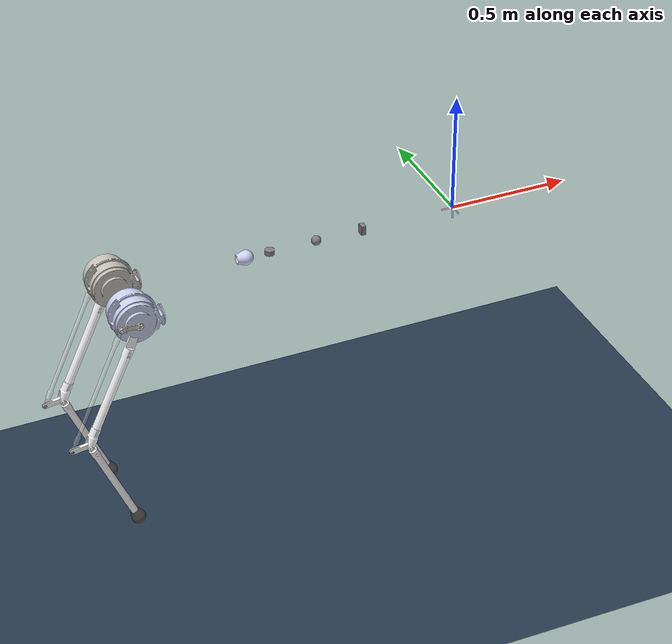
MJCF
<!-- 相同 calf 版本 -->
<mujoco model="legged">
    <compiler angle="radian" />
    <option timestep="0.001" gravity="0 0 -10" />
    <include file="./worlds.xml" />
    <asset>
        <mesh name="torso_link" file="foot_l_Link.STL" />
        <mesh name="motor_r_Link" file="motor_r_Link.STL" />
        <mesh name="thigh_r_Link" file="thigh_r_Link.STL" />
        <mesh name="shank_r_Link" file="shank_r_Link.STL" />
        <mesh name="foot_r_Link" file="foot_r_Link.STL" />
        <mesh name="crank_r_Link" file="crank_r_Link.STL" />
        <mesh name="calf_r_Link" file="calf_r_Link.STL" />
        <mesh name="motor_l_Link" file="motor_l_Link.STL" />
        <mesh name="thigh_l_Link" file="thigh_l_Link.STL" />
        <mesh name="shank_l_Link" file="shank_l_Link.STL" />
        <mesh name="foot_l_Link" file="foot_l_Link.STL" />
        <mesh name="crank_l_Link" file="crank_l_Link.STL" />
        <mesh name="calf_l_Link" file="calf_r_Link.STL" />
    </asset>

    <default>
        <joint damping="0.03" frictionloss="0.02" range="-45 45" />
    </default>

    <worldbody>
        <light name="spotlight" mode="targetbodycom" target="torso_Link"
            diffuse=".8 .8 .8" specular="0.3 0.3 0.3" pos="0 -6 4" cutoff="30" />
        <camera name="topview" pos="0 0 200" xyaxes="1 0 0 0 1 0" target="torso_Link" />
        <geom name="ground" type="plane" size="0 0 1" pos="0.0 0 -1.5" quat="1 0 0 0"
            material="matplane" condim="1" conaffinity='15' />
        <body name="ctbase">
            <body name="x_block" pos="-0.4 0 0">
                <inertial pos="0 0 0" mass="1e-07" diaginertia="1e-10 1e-10 1e-10" />
                <geom size="0.01 0.015 0.02" type="box" contype="0" conaffinity="0" group="1"
                    density="0" />
                <body name="y_block" pos="-0.2 0 0">
                    <inertial pos="0 0 0" mass="1e-07" diaginertia="1e-10 1e-10 1e-10" />
                    <joint name="x_prismatic_joint" pos="0 0 0" axis="1 0 0" type="slide"
                        range="-0.01 0.01" actuatorfrcrange="-100 100" damping="10" frictionloss="1" />
                    <geom size="0.02" contype="0" conaffinity="0" group="1" density="0" />
                    <body name="z_block" pos="-0.2 0 0">
                        <inertial pos="0 0 0" mass="1e-07" diaginertia="1e-10 1e-10 1e-10" />
                        <joint name="y_prismatic_joint" pos="0 0 0" axis="0 1 0" type="slide"
                            range="-0.01 0.01" actuatorfrcrange="-100 100" damping="10"
                            frictionloss="1" />
                        <geom size="0.02 0.01" type="cylinder" contype="0" conaffinity="0" group="1"
                            density="0" />
                        <body name="roll_block">
                            <inertial pos="0 0 0" mass="1e-07" diaginertia="1e-10 1e-10 1e-10" />
                            <joint name="z_prismatic_joint" pos="0 0 0" axis="0 0 1" type="slide"
                                range="-0.01 0.01" actuatorfrcrange="-1000 1000" damping="10"
                                frictionloss="1" />
                            <body name="pitch_block" pos="-0.1 0 0">
                                <inertial pos="0 0 0" mass="1e-07" diaginertia="1e-10 1e-10 1e-10" />
                                <joint name="roll_joint" pos="0 0 0" axis="1 0 0" range="-0.1 0.1"
                                    actuatorfrcrange="-10 10" />
                                <body name="yaw_block">
                                    <inertial pos="0 0 0" mass="1e-07"
                                        diaginertia="1e-10 1e-10 1e-10" />
                                    <joint name="pitch_joint" pos="0 0 0" axis="0 1 0"
                                        range="-0.01 0.01" actuatorfrcrange="-10 10" />
                                    <body name="f_t_sensor_link">
                                        <inertial pos="0 0 0" mass="1e-07"
                                            diaginertia="1e-10 1e-10 1e-10" />
                                        <joint name="yaw_f_t_sensor_joint" pos="0 0 0"
                                            axis="0
                                        0 1"
                                            range="-0.05  0.05 " actuatorfrcrange="-10 10" />
                                        <site name='ft_sensor' size='0.001' pos='0.0 0 0.0' />
                                        <geom size="0.02" contype="0" conaffinity="0" group="1"
                                            density="0" />
                                        <body name="torso_Link">
                                            <inertial pos="-0.391934 -0.00660919 -0.0525461"
                                                quat="0.473521 0.502197 0.559421 0.458938"
                                                mass="13.48"
                                                diaginertia="0.405127 0.346057 0.142614" />
                                            <geom type="mesh" contype="0" conaffinity="0" group="1"
                                                density="0" rgba="0.79216 0.81961 0.93333 1"
                                                mesh="torso_link" />
                                            <body name="imu_link" pos="-0.4485 -0.00367 -0.10225">
                                                <inertial pos="0 0 0" mass="0" diaginertia="0 0 0" />
                                                <geom size="0.01 0.01 0.01" type="box" contype="0"
                                                    conaffinity="0" group="1" density="0" />
                                                <site name='imu' size='0.01' pos='0.0 0 0.0' />
                                            </body>

                                            <body name="hip_knee_motor_l_Link"
                                                pos="-0.4036 0.13 -0.0725"
                                                quat="0.707105 0 -0.707108 0">
                                                <inertial pos="0.001764 0.0362829 0.103246"
                                                    quat="0.768057 0.636319 0.0529697 -0.0488022"
                                                    mass="4.31137"
                                                    diaginertia="0.0174643 0.0169442 0.015646" />
                                                <joint name="abad_hip_knee_motor_l_joint"
                                                    pos="0 0 0" axis="0 0 1"
                                                    range="-0.5 0.8" />
                                                <geom type="mesh" contype="0" conaffinity="0"
                                                    group="1" density="0"
                                                    rgba="0.776471 0.756863 0.737255 1"
                                                    mesh="motor_l_Link" />
                                                <body name="thigh_l_Link" pos="0 0.0294 0.106"
                                                    quat="0.147785 -0.147789 -0.691491 -0.69149">
                                                    <inertial pos="0.311049 -8.3131e-09 0.00399628"
                                                        quat="-0.267431 0.654594 -0.26744 0.654571"
                                                        mass="0.444095"
                                                        diaginertia="0.01466 0.01466 9.84122e-05" />
                                                    <joint name="hip_thigh_l_joint" pos="0 0 0"
                                                        axis="0 0 1" limited="true"
                                                        range="-1 0.8" />
                                                    <geom type="mesh" contype="0" conaffinity="0"
                                                        group="1" density="0" rgba="1 1 1 1"
                                                        mesh="thigh_l_Link" />
                                                    <body name="shank_l_Link" pos="0.552 0 0.0041"
                                                        quat="0.913054 0 0 -0.407838">
                                                        <inertial pos="0.17154 0.0038189 4.2027e-10"
                                                            quat="0.00458353 0.707092 -0.00458353 0.707092"
                                                            mass="0.28073"
                                                            diaginertia="0.0028899 0.00285217 8.03122e-05" />
                                                        <joint name="shank_l_joint" pos="0 0 0"
                                                            axis="0 0 1" limited="true"
                                                            range="-0.4 0.4" />
                                                        <geom type="mesh" contype="0"
                                                            conaffinity="0" group="1" density="0"
                                                            rgba="1 1 1 1" mesh="shank_l_Link" />
                                                        <site name='site_shank_l_Link'
                                                            size='0.01'
                                                            pos='-0.01863 0.06955 0.0' />
                                                        <body name="foot_l_Link" pos="0.454 0 0">
                                                            <inertial pos="-0.00104095 0 0"
                                                                quat="0.5 0.5 0.5 0.5"
                                                                mass="0.107219"
                                                                diaginertia="4.84669e-05 4.84669e-05 4.40994e-05" />
                                                            <geom type="mesh" contype="0"
                                                                conaffinity="0" group="1"
                                                                density="0"
                                                                rgba="0.298039 0.298039 0.298039 1"
                                                                mesh="foot_l_Link" />
                                                            <geom type="mesh"
                                                                rgba="0.298039 0.298039 0.298039 1"
                                                                mesh="foot_l_Link" />
                                                        </body>
                                                    </body>
                                                </body>
                                                <body name="crank_l_Link" pos="0 0.047147 0.106"
                                                    quat="0.529526 -0.529528 -0.468616 -0.468617">
                                                    <inertial
                                                        pos="0.0380508 -0.00330236 -0.00328045"
                                                        quat="0.0386219 0.707063 -0.0374888 0.705099"
                                                        mass="0.0822004"
                                                        diaginertia="5.40084e-05 5.03536e-05 4.00915e-06" />
                                                    <joint name="crank_l_joint" pos="0 0 0"
                                                        axis="0 0 1" limited="true"
                                                        range="-0.4 0.4" />
                                                    <geom type="mesh" contype="0" conaffinity="0"
                                                        group="1" density="0"
                                                        rgba="0.776471 0.756863 0.737255 1"
                                                        mesh="crank_l_Link" />
                                                    <body name="calf_l_Link"
                                                        pos="0.071173 -0.010881 -0.0227"
                                                        quat="0.802215 0 0 -0.597035">
                                                        <inertial pos="0.28 -2.87515e-08 -0.003"
                                                            quat="4.78862e-05 0.707107 4.78862e-05 0.707107"
                                                            mass="0.122472"
                                                            diaginertia="0.00143366 0.00143344 6.20664e-06" />
                                                        <joint name="calf_l_joint" pos="0 0 0"
                                                            axis="0 0 1" limited="false"
                                                            range="-0.8 0.8" />
                                                        <geom type="mesh" contype="0"
                                                            conaffinity="0" group="1" density="0"
                                                            rgba="1 1 1 0.5" mesh="calf_l_Link" />
                                                        <site name='site_calf_l_Link'
                                                            size='0.01' pos='0.56 0 0.00885' />
                                                    </body>
                                                </body>
                                            </body>

                                            <body name="hip_knee_motor_r_Link"
                                                pos="-0.4036 -0.13 -0.0725"
                                                quat="0.707105 0 -0.707108 0">
                                                <inertial pos="0.001764 -0.03628 0.103246"
                                                    mass="4.31" diaginertia="0.02 0.02 0.02" />
                                                <joint name="abad_hip_knee_motor_r_joint"
                                                    pos="0 0 0" axis="0 0 1"
                                                    range="-0.8 0.5" />
                                                <geom type="mesh" contype="0" conaffinity="0"
                                                    group="1" density="0"
                                                    rgba="0.792157 0.819608 0.933333 1"
                                                    mesh="motor_r_Link" />
                                                <body name="thigh_r_Link" pos="0 -0.0293 0.106"
                                                    quat="0.147785 -0.147789 -0.691491 -0.69149">
                                                    <inertial pos="0.31105 -8.3131e-09 -0.00400372"
                                                        quat="-0.267431 0.654594 -0.26744 0.654571"
                                                        mass="0.444095"
                                                        diaginertia="0.01466 0.01466 9.84122e-05" />
                                                    <joint name="hip_thigh_r_joint" pos="0 0 0"
                                                        axis="0 0 1" limited="true"
                                                        range="-1 0.8" />
                                                    <geom type="mesh" contype="0" conaffinity="0"
                                                        group="1" density="0" rgba="1 1 1 1"
                                                        mesh="thigh_r_Link" />
                                                    <body name="shank_r_Link" pos="0.552 0 -0.0041"
                                                        quat="0.913054 0 0 -0.407838">
                                                        <inertial pos="0.17154 0.0038189 4.2027e-10"
                                                            quat="0.00458353 0.707092 -0.00458353 0.707092"
                                                            mass="0.28073"
                                                            diaginertia="0.0028899 0.00285217 8.03122e-05" />
                                                        <joint name="shank_r_joint" pos="0 0 0"
                                                            axis="0 0 1" limited="true"
                                                            range="-0.4 0.4" />
                                                        <geom type="mesh" contype="0"
                                                            conaffinity="0" group="1" density="0"
                                                            rgba="1 1 1 1" mesh="shank_r_Link" />
                                                        <site name='site_shank_r_Link'
                                                            size='0.01'
                                                            pos='-0.01863 0.06955 0.0' />
                                                        <body name="foot_r_Link" pos="0.454 0 0">
                                                            <inertial pos="-0.00104095 0 0"
                                                                quat="0.5 0.5 0.5 0.5"
                                                                mass="0.107219"
                                                                diaginertia="4.84669e-05 4.84669e-05 4.40994e-05" />
                                                            <geom type="mesh" contype="0"
                                                                conaffinity="0" group="1"
                                                                density="0"
                                                                rgba="0.298039 0.298039 0.298039 1"
                                                                mesh="foot_r_Link" />
                                                            <geom type="mesh"
                                                                rgba="0.298039 0.298039 0.298039 1"
                                                                mesh="foot_r_Link" />
                                                        </body>
                                                    </body>
                                                </body>
                                                <body name="crank_r_Link" pos="0 -0.047247 0.106"
                                                    quat="0.529526 -0.529528 -0.468616 -0.468617">
                                                    <inertial pos="0.0380508 -0.00330236 0.00338237"
                                                        quat="0.0386219 0.707063 -0.0374888 0.705099"
                                                        mass="0.0822004"
                                                        diaginertia="5.40084e-05 5.03536e-05 4.00915e-06" />
                                                    <!-- 这里是并联的开始，5kg对应的文件并没有这部分的配置 -->
                                                    <joint name="crank_r_joint" pos="0 0 0"
                                                        axis="0 0 1" limited="true"
                                                        range="-0.4 0.4" />
                                                    <geom type="mesh" contype="0" conaffinity="0"
                                                        group="1" density="0"
                                                        rgba="0.776471 0.756863 0.737255 1"
                                                        mesh="crank_r_Link" />
                                                    <body name="calf_r_Link"
                                                        pos="0.071173 -0.010881 0.0049975"
                                                        quat="0.802215 0 0 -0.597035">
                                                        <inertial pos="0.28 -2.875e-08 0.00885"
                                                            quat="3.50595e-05 0.707107 3.50595e-05 0.707107"
                                                            mass="0.12247"
                                                            diaginertia="0.0014337 0.0014334 6.2066e-06" />
                                                        <joint name="crank_calf_r_joint" pos="0 0 0"
                                                            axis="0 0 1" limited="false"
                                                            range="-0.8 0.8" />
                                                        <geom type="mesh" contype="0"
                                                            conaffinity="0" group="1" density="0"
                                                            rgba="1 1 1 0.3" mesh="calf_r_Link" />
                                                        <site name='site_calf_r_Link'
                                                            size='0.01' pos='0.56 0 0.00885' />
                                                    </body>
                                                </body>
                                            </body>

                                        </body>
                                    </body>
                                </body>
                            </body>
                        </body>
                    </body>
                </body>
            </body>
        </body>
    </worldbody>

    <actuator>
        <motor name="x_prismatic_joint_motor" joint="x_prismatic_joint" gear="1" ctrllimited="true"
            ctrlrange="-100 100" />
        <motor name="y_prismatic_joint_motor" joint="y_prismatic_joint" gear="1" ctrllimited="true"
            ctrlrange="-100 100" />
        <motor name="z_prismatic_joint_motor" joint="z_prismatic_joint" gear="1" ctrllimited="true"
            ctrlrange="-1000 1000" />
        <motor name="roll_joint_motor" joint="roll_joint" gear="1" ctrllimited="true"
            ctrlrange="-10 10" />
        <motor name="pitch_joint_motor" joint="pitch_joint" gear="1" ctrllimited="true"
            ctrlrange="-10 10" />
        <motor name="yaw_joint_motor" joint="yaw_f_t_sensor_joint" gear="1" ctrllimited="true"
            ctrlrange="-10 10" />

        <motor name="abad_hip_knee_motor_l_joint_motor" joint="abad_hip_knee_motor_l_joint" gear="1"
            ctrllimited="true" ctrlrange="-120 120" />
        <motor name="hip_thigh_l_joint_motor" joint="hip_thigh_l_joint" gear="1" ctrllimited="true"
            ctrlrange="-120 120" />
        <motor name="crank_l_joint_motor" joint="crank_l_joint" gear="1"
            ctrllimited="true" ctrlrange="-120 120" />
        <motor name="abad_hip_knee_motor_r_joint_motor" joint="abad_hip_knee_motor_r_joint" gear="1"
            ctrllimited="true" ctrlrange="-120 120" />
        <motor name="hip_thigh_r_joint_motor" joint="hip_thigh_r_joint" gear="1" ctrllimited="true"
            ctrlrange="-120 120" />
        <motor name="crank_r_joint_motor" joint="crank_r_joint" gear="1"
            ctrllimited="true" ctrlrange="-120 120" />
    </actuator>

    <sensor>
        <actuatorpos name='x_prismatic_joint_motor_p' actuator='x_prismatic_joint_motor' user='13' />
        <actuatorpos name='y_prismatic_joint_motor_p' actuator='y_prismatic_joint_motor' user='13' />
        <actuatorpos name='z_prismatic_joint_motor_p' actuator='z_prismatic_joint_motor' user='13' />
        <actuatorpos name='roll_joint_motor_p' actuator='roll_joint_motor' user='13' />
        <actuatorpos name='pitch_joint_motor_p' actuator='pitch_joint_motor' user='13' />
        <actuatorpos name='yaw_joint_motor_p' actuator='yaw_joint_motor' user='13' />

        <actuatorpos name='abad_hip_knee_motor_l_joint_motor_p'
            actuator='abad_hip_knee_motor_l_joint_motor' user='13' />
        <actuatorpos name='hip_thigh_l_joint_motor_p' actuator='hip_thigh_l_joint_motor' user='13' />
        <actuatorpos name='crank_l_joint_motor_p' actuator='crank_l_joint_motor'
            user='13' />
        <actuatorpos name='abad_hip_knee_motor_r_joint_motor_p'
            actuator='abad_hip_knee_motor_r_joint_motor' user='13' />
        <actuatorpos name='hip_thigh_r_joint_motor_p' actuator='hip_thigh_r_joint_motor' user='13' />
        <actuatorpos name='crank_r_joint_motor_p' actuator='crank_r_joint_motor'
            user='13' />

        <!-- 用于测试串并联之间的关系  -->
        <jointpos name='shank_r_joint_p' joint='shank_r_joint' user='13' />
        <jointpos name='hip_thigh_r_joint_p' joint='hip_thigh_r_joint' user='13' />
        <jointpos name='crank_r_joint_p' joint='crank_r_joint'
            user='13' />
        <jointpos name='shank_l_joint_p' joint='shank_l_joint' user='13' />

        <!-- 用于测试串并联之间的关系  -->

        <actuatorvel name='x_prismatic_joint_motor_v' actuator='x_prismatic_joint_motor' user='13' />
        <actuatorvel name='y_prismatic_joint_motor_v' actuator='y_prismatic_joint_motor' user='13' />
        <actuatorvel name='z_prismatic_joint_motor_v' actuator='z_prismatic_joint_motor' user='13' />
        <actuatorvel name='roll_joint_motor_v' actuator='roll_joint_motor' user='13' />
        <actuatorvel name='pitch_joint_motor_v' actuator='pitch_joint_motor' user='13' />
        <actuatorvel name='yaw_joint_motor_v' actuator='yaw_joint_motor' user='13' />

        <actuatorvel name='abad_hip_knee_motor_l_joint_motor_v'
            actuator='abad_hip_knee_motor_l_joint_motor' user='13' />
        <actuatorvel name='hip_thigh_l_joint_motor_v' actuator='hip_thigh_l_joint_motor' user='13' />
        <actuatorvel name='crank_l_joint_motor_v' actuator='crank_l_joint_motor'
            user='13' />
        <actuatorvel name='abad_hip_knee_motor_r_joint_motor_v'
            actuator='abad_hip_knee_motor_r_joint_motor' user='13' />
        <actuatorvel name='hip_thigh_r_joint_motor_v' actuator='hip_thigh_r_joint_motor' user='13' />
        <actuatorvel name='crank_r_joint_motor_v' actuator='crank_r_joint_motor'
            user='13' />

        <actuatorfrc name='abad_hip_knee_motor_l_joint_motor_f'
            actuator='abad_hip_knee_motor_l_joint_motor' user='13' noise='1e-3' />
        <actuatorfrc name='abad_hip_knee_motor_r_joint_motor_f'
            actuator='abad_hip_knee_motor_r_joint_motor' user='13' />
        <actuatorfrc name='hip_thigh_l_joint_motor_f' actuator='hip_thigh_l_joint_motor' user='13' />
        <actuatorfrc name='hip_thigh_r_joint_motor_f' actuator='hip_thigh_r_joint_motor' user='13' />
        <actuatorfrc name='crank_l_joint_motor_f' actuator='crank_l_joint_motor'
            user='13' />
        <actuatorfrc name='crank_r_joint_motor_f' actuator='crank_r_joint_motor'
            user='13' />

        <actuatorfrc name='x_prismatic_joint_motor_f' actuator='x_prismatic_joint_motor' user='13' />
        <actuatorfrc name='y_prismatic_joint_motor_f' actuator='y_prismatic_joint_motor' user='13' />
        <actuatorfrc name='z_prismatic_joint_motor_f' actuator='z_prismatic_joint_motor' user='13' />
        <actuatorfrc name='roll_joint_motor_f' actuator='roll_joint_motor' user='13' />
        <actuatorfrc name='pitch_joint_motor_f' actuator='pitch_joint_motor' user='13' />
        <actuatorfrc name='yaw_joint_motor_f' actuator='yaw_joint_motor' user='13' />

        <framequat name='orientation' objtype='site' noise='0.001' objname='imu' />
        <framepos name='position' objtype='site' noise='0.001' objname='imu' />
        <gyro name='angular-velocity' site='imu' noise='0.005' cutoff='34.9' />
        <velocimeter name='linear-velocity' site='imu' noise='0.001' cutoff='30' />
        <accelerometer name='linear-acceleration' site='imu' noise='0.005' cutoff='157' />
        <magnetometer name='magnetometer' site='imu' />

        <force name="inter_force_sensor" site='ft_sensor' />
        <torque name="inter_torque_sensor" site='ft_sensor' />

    </sensor>

    <equality>
        <connect name="connect_l" site1="site_shank_l_Link" site2="site_calf_l_Link" />
        <connect name="connect_r" site1="site_shank_r_Link" site2="site_calf_r_Link" />
    </equality>
</mujoco>

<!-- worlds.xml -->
<mujoco>
    <option timestep="0.001" gravity="0 0 -10" />
    <worldbody>
        <!-- 世界坐标系箭头 -->
        <body name="world_axes" pos="0 0 0">
            <geom type="cylinder" pos="0 0 0" euler="0 1.57079 0" size="0.003 0.05" rgba="1 0 0 0.1"
                contype="0" conaffinity="0" />
            <geom type="cylinder" pos="0 0 0" euler="1.57079 0 0" size="0.003 0.05" rgba="0 1 0 0.1"
                contype="0" conaffinity="0" />
            <geom type="cylinder" pos="0 0 0" euler="0 0 0" size="0.003 0.05" rgba="0 0 1 0.1"
                contype="0" conaffinity="0" />
        </body>
    </worldbody>

    <asset>
        <texture type="skybox" builtin="gradient" rgb1="0.3 0.5 0.7" rgb2="0 0 0" width="512"
            height="512" />
        <texture name="texplane" type="2d" builtin="checker" rgb1=".2 .3 .4" rgb2=".1 0.15 0.2"
            width="512" height="512" mark="cross" markrgb=".8 .8 .8" />
        <texture name="texplane2" type="2d" builtin="checker" rgb1="1 0.3137 0.1843"
            rgb2="0.0 0.30196 0.38039"
            width="512" height="512" mark="cross" markrgb=".8 .8 .8" />
        <material name="matplane" reflectance="0." texture="texplane" texrepeat="1 1"
            texuniform="true" />
        <material name="matplane2" reflectance="0.1" texture="texplane2" texrepeat="1 1"
            texuniform="true" />
        <texture type="skybox" builtin="gradient" rgb1="0.3 0.5 0.7" rgb2="0 0 0" width="512"
            height="512" />
        <material name='obstacle' rgba='0.9 0.6 0.2 1' />
        <material name='visualgeom' rgba='0.5 0.9 0.2 1' />
        <material name='visualgeom2' rgba='0.5 0.9 0.2 1' />
    </asset>
</mujoco>
